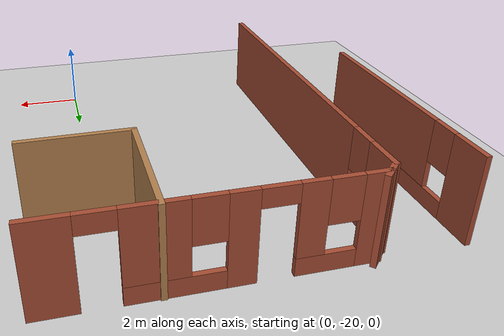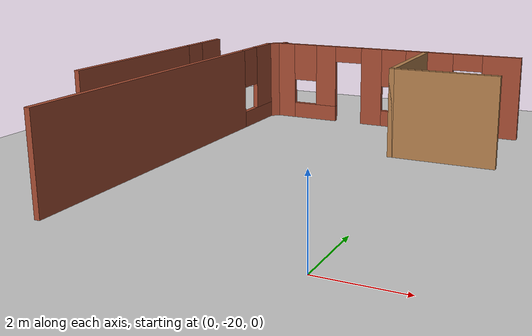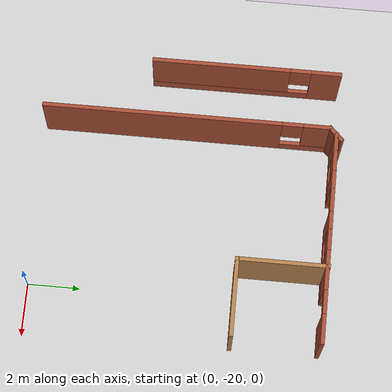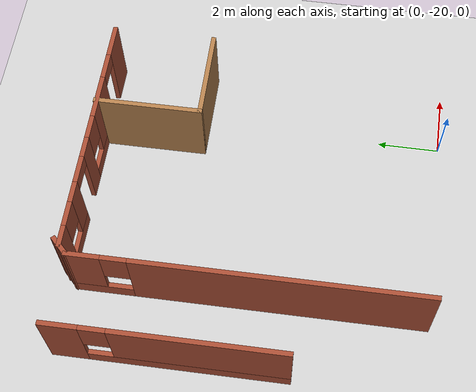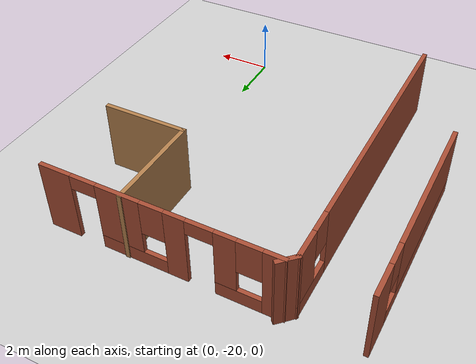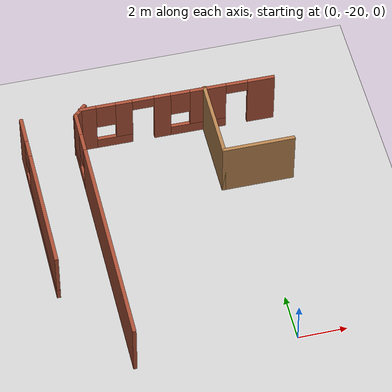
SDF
<sdf version="1.6">
 <world name="default">
  <model name="ground_plane">
   <static>1</static>
   <link name="link">
    <collision name="collision">
     <geometry><plane><normal>0 0 1</normal><size>100 100</size></plane></geometry>
     <surface><friction><ode><mu>100</mu><mu2>50</mu2></ode></friction></surface>
    </collision>
    <visual name="visual">
     <cast_shadows>0</cast_shadows>
     <geometry><plane><normal>0 0 1</normal><size>100 100</size></plane></geometry>
     <material>
      <script><uri>file://media/materials/scripts/gazebo.material</uri><name>Gazebo/Grey</name></script>
     </material>
    </visual>
   </link>
  </model>
  <model name="vital">
   <pose>1.2398 -2.19799 0 0 -0 0</pose>
   <link name="Wall_113">
    <pose>-9.88551 -10.1726 0 0 0 -1.5708</pose>
    <visual name="Wall_113_Visual_0">
     <pose>-3.04191 0 1.25 0 -0 0</pose>
     <geometry><box><size>1.16617 0.15 2.5</size></box></geometry>
     <material>
      <script><uri>file://media/materials/scripts/gazebo.material</uri><name>Gazebo/Bricks</name></script>
      <ambient>1 1 1 1</ambient>
     </material>
    </visual>
    <collision name="Wall_113_Collision_0">
     <geometry><box><size>1.16617 0.15 2.5</size></box></geometry>
     <pose>-3.04191 0 1.25 0 -0 0</pose>
    </collision>
    <visual name="Wall_113_Visual_1">
     <pose>0.583086 0 0.25 0 -0 0</pose>
     <geometry><box><size>6.08383 0.15 0.5</size></box></geometry>
     <material>
      <script><uri>file://media/materials/scripts/gazebo.material</uri><name>Gazebo/Bricks</name></script>
      <ambient>1 1 1 1</ambient>
     </material>
    </visual>
    <collision name="Wall_113_Collision_1">
     <geometry><box><size>6.08383 0.15 0.5</size></box></geometry>
     <pose>0.583086 0 0.25 0 -0 0</pose>
    </collision>
    <visual name="Wall_113_Visual_2">
     <pose>0.983086 0 1.5 0 -0 0</pose>
     <geometry><box><size>5.28383 0.15 2</size></box></geometry>
     <material>
      <script><uri>file://media/materials/scripts/gazebo.material</uri><name>Gazebo/Bricks</name></script>
      <ambient>1 1 1 1</ambient>
     </material>
    </visual>
    <collision name="Wall_113_Collision_2">
     <geometry><box><size>5.28383 0.15 2</size></box></geometry>
     <pose>0.983086 0 1.5 0 -0 0</pose>
    </collision>
    <visual name="Wall_113_Visual_3">
     <pose>-2.05883 0 1.9 0 -0 0</pose>
     <geometry><box><size>0.8 0.15 1.2</size></box></geometry>
     <material>
      <script><uri>file://media/materials/scripts/gazebo.material</uri><name>Gazebo/Bricks</name></script>
      <ambient>1 1 1 1</ambient>
     </material>
    </visual>
    <collision name="Wall_113_Collision_3">
     <geometry><box><size>0.8 0.15 1.2</size></box></geometry>
     <pose>-2.05883 0 1.9 0 -0 0</pose>
    </collision>
   </link>
   <link name="Wall_116">
    <pose>-3.44702 -6.63306 0 0 0 -0.006694</pose>
    <visual name="Wall_116_Visual_0">
     <pose>-3.71942 0 1.25 0 -0 0</pose>
     <geometry><box><size>0.704332 0.15 2.5</size></box></geometry>
     <material>
      <script><uri>file://media/materials/scripts/gazebo.material</uri><name>Gazebo/Bricks</name></script>
      <ambient>1 1 1 1</ambient>
     </material>
    </visual>
    <collision name="Wall_116_Collision_0">
     <geometry><box><size>0.704332 0.15 2.5</size></box></geometry>
     <pose>-3.71942 0 1.25 0 -0 0</pose>
    </collision>
    <visual name="Wall_116_Visual_1">
     <pose>-0.624879 0 1.25 0 -0 0</pose>
     <geometry><box><size>0.697096 0.15 2.5</size></box></geometry>
     <material>
      <script><uri>file://media/materials/scripts/gazebo.material</uri><name>Gazebo/Bricks</name></script>
      <ambient>1 1 1 1</ambient>
     </material>
    </visual>
    <collision name="Wall_116_Collision_1">
     <geometry><box><size>0.697096 0.15 2.5</size></box></geometry>
     <pose>-0.624879 0 1.25 0 -0 0</pose>
    </collision>
    <visual name="Wall_116_Visual_2">
     <pose>3.5022 0 1.25 0 -0 0</pose>
     <geometry><box><size>1.13877 0.15 2.5</size></box></geometry>
     <material>
      <script><uri>file://media/materials/scripts/gazebo.material</uri><name>Gazebo/Bricks</name></script>
      <ambient>1 1 1 1</ambient>
     </material>
    </visual>
    <collision name="Wall_116_Collision_2">
     <geometry><box><size>1.13877 0.15 2.5</size></box></geometry>
     <pose>3.5022 0 1.25 0 -0 0</pose>
    </collision>
    <visual name="Wall_116_Visual_3">
     <pose>-2.62034 0 0.25 0 -0 0</pose>
     <geometry><box><size>1.49383 0.15 0.5</size></box></geometry>
     <material>
      <script><uri>file://media/materials/scripts/gazebo.material</uri><name>Gazebo/Bricks</name></script>
      <ambient>1 1 1 1</ambient>
     </material>
    </visual>
    <collision name="Wall_116_Collision_3">
     <geometry><box><size>1.49383 0.15 0.5</size></box></geometry>
     <pose>-2.62034 0 0.25 0 -0 0</pose>
    </collision>
    <visual name="Wall_116_Visual_4">
     <pose>0.878245 0 0.25 0 -0 0</pose>
     <geometry><box><size>2.30915 0.15 0.5</size></box></geometry>
     <material>
      <script><uri>file://media/materials/scripts/gazebo.material</uri><name>Gazebo/Bricks</name></script>
      <ambient>1 1 1 1</ambient>
     </material>
    </visual>
    <collision name="Wall_116_Collision_4">
     <geometry><box><size>2.30915 0.15 0.5</size></box></geometry>
     <pose>0.878245 0 0.25 0 -0 0</pose>
    </collision>
    <visual name="Wall_116_Visual_5">
     <pose>-2.22034 0 1.5 0 -0 0</pose>
     <geometry><box><size>0.693829 0.15 2</size></box></geometry>
     <material>
      <script><uri>file://media/materials/scripts/gazebo.material</uri><name>Gazebo/Bricks</name></script>
      <ambient>1 1 1 1</ambient>
     </material>
    </visual>
    <collision name="Wall_116_Collision_5">
     <geometry><box><size>0.693829 0.15 2</size></box></geometry>
     <pose>-2.22034 0 1.5 0 -0 0</pose>
    </collision>
    <visual name="Wall_116_Visual_6">
     <pose>-2.22034 0 1.5 0 -0 0</pose>
     <geometry><box><size>0.693829 0.15 2</size></box></geometry>
     <material>
      <script><uri>file://media/materials/scripts/gazebo.material</uri><name>Gazebo/Bricks</name></script>
      <ambient>1 1 1 1</ambient>
     </material>
    </visual>
    <collision name="Wall_116_Collision_6">
     <geometry><box><size>0.693829 0.15 2</size></box></geometry>
     <pose>-2.22034 0 1.5 0 -0 0</pose>
    </collision>
    <visual name="Wall_116_Visual_7">
     <pose>1.27825 0 1.5 0 -0 0</pose>
     <geometry><box><size>1.50915 0.15 2</size></box></geometry>
     <material>
      <script><uri>file://media/materials/scripts/gazebo.material</uri><name>Gazebo/Bricks</name></script>
      <ambient>1 1 1 1</ambient>
     </material>
    </visual>
    <collision name="Wall_116_Collision_7">
     <geometry><box><size>1.50915 0.15 2</size></box></geometry>
     <pose>1.27825 0 1.5 0 -0 0</pose>
    </collision>
    <visual name="Wall_116_Visual_8">
     <pose>-2.96726 0 1.9 0 -0 0</pose>
     <geometry><box><size>0.8 0.15 1.2</size></box></geometry>
     <material>
      <script><uri>file://media/materials/scripts/gazebo.material</uri><name>Gazebo/Bricks</name></script>
      <ambient>1 1 1 1</ambient>
     </material>
    </visual>
    <collision name="Wall_116_Collision_8">
     <geometry><box><size>0.8 0.15 1.2</size></box></geometry>
     <pose>-2.96726 0 1.9 0 -0 0</pose>
    </collision>
    <visual name="Wall_116_Visual_9">
     <pose>0.12367 0 1.9 0 -0 0</pose>
     <geometry><box><size>0.8 0.15 1.2</size></box></geometry>
     <material>
      <script><uri>file://media/materials/scripts/gazebo.material</uri><name>Gazebo/Bricks</name></script>
      <ambient>1 1 1 1</ambient>
     </material>
    </visual>
    <collision name="Wall_116_Collision_9">
     <geometry><box><size>0.8 0.15 1.2</size></box></geometry>
     <pose>0.12367 0 1.9 0 -0 0</pose>
    </collision>
    <visual name="Wall_116_Visual_10">
     <pose>-1.42343 0 2.25 0 -0 0</pose>
     <geometry><box><size>0.9 0.15 0.5</size></box></geometry>
     <material>
      <script><uri>file://media/materials/scripts/gazebo.material</uri><name>Gazebo/Bricks</name></script>
      <ambient>1 1 1 1</ambient>
     </material>
    </visual>
    <collision name="Wall_116_Collision_10">
     <geometry><box><size>0.9 0.15 0.5</size></box></geometry>
     <pose>-1.42343 0 2.25 0 -0 0</pose>
    </collision>
    <visual name="Wall_116_Visual_11">
     <pose>-1.42343 0 2.25 0 -0 0</pose>
     <geometry><box><size>0.9 0.15 0.5</size></box></geometry>
     <material>
      <script><uri>file://media/materials/scripts/gazebo.material</uri><name>Gazebo/Bricks</name></script>
      <ambient>1 1 1 1</ambient>
     </material>
    </visual>
    <collision name="Wall_116_Collision_11">
     <geometry><box><size>0.9 0.15 0.5</size></box></geometry>
     <pose>-1.42343 0 2.25 0 -0 0</pose>
    </collision>
    <visual name="Wall_116_Visual_12">
     <pose>2.48282 0 2.25 0 -0 0</pose>
     <geometry><box><size>0.9 0.15 0.5</size></box></geometry>
     <material>
      <script><uri>file://media/materials/scripts/gazebo.material</uri><name>Gazebo/Bricks</name></script>
      <ambient>1 1 1 1</ambient>
     </material>
    </visual>
    <collision name="Wall_116_Collision_12">
     <geometry><box><size>0.9 0.15 0.5</size></box></geometry>
     <pose>2.48282 0 2.25 0 -0 0</pose>
    </collision>
   </link>
   <link name="Wall_119">
    <pose>-7.69351 -12.2813 0 0 -0 1.5708</pose>
    <visual name="Wall_119_Visual_0">
     <pose>-0.947604 0 1.25 0 -0 0</pose>
     <geometry><box><size>9.10479 0.15 2.5</size></box></geometry>
     <material>
      <script><uri>file://media/materials/scripts/gazebo.material</uri><name>Gazebo/Bricks</name></script>
      <ambient>1 1 1 1</ambient>
     </material>
    </visual>
    <collision name="Wall_119_Collision_0">
     <geometry><box><size>9.10479 0.15 2.5</size></box></geometry>
     <pose>-0.947604 0 1.25 0 -0 0</pose>
    </collision>
    <visual name="Wall_119_Visual_1">
     <pose>4.5524 0 0.25 0 -0 0</pose>
     <geometry><box><size>1.89521 0.15 0.5</size></box></geometry>
     <material>
      <script><uri>file://media/materials/scripts/gazebo.material</uri><name>Gazebo/Bricks</name></script>
      <ambient>1 1 1 1</ambient>
     </material>
    </visual>
    <collision name="Wall_119_Collision_1">
     <geometry><box><size>1.89521 0.15 0.5</size></box></geometry>
     <pose>4.5524 0 0.25 0 -0 0</pose>
    </collision>
    <visual name="Wall_119_Visual_2">
     <pose>4.9524 0 1.5 0 -0 0</pose>
     <geometry><box><size>1.09521 0.15 2</size></box></geometry>
     <material>
      <script><uri>file://media/materials/scripts/gazebo.material</uri><name>Gazebo/Bricks</name></script>
      <ambient>1 1 1 1</ambient>
     </material>
    </visual>
    <collision name="Wall_119_Collision_2">
     <geometry><box><size>1.09521 0.15 2</size></box></geometry>
     <pose>4.9524 0 1.5 0 -0 0</pose>
    </collision>
    <visual name="Wall_119_Visual_3">
     <pose>4.00479 0 1.9 0 -0 0</pose>
     <geometry><box><size>0.8 0.15 1.2</size></box></geometry>
     <material>
      <script><uri>file://media/materials/scripts/gazebo.material</uri><name>Gazebo/Bricks</name></script>
      <ambient>1 1 1 1</ambient>
     </material>
    </visual>
    <collision name="Wall_119_Collision_3">
     <geometry><box><size>0.8 0.15 1.2</size></box></geometry>
     <pose>4.00479 0 1.9 0 -0 0</pose>
    </collision>
   </link>
   <link name="Wall_120">
    <collision name="Wall_120_Collision">
     <geometry><box><size>0.75 0.15 2.5</size></box></geometry>
     <pose>0 0 1.25 0 -0 0</pose>
    </collision>
    <visual name="Wall_120_Visual">
     <pose>0 0 1.25 0 -0 0</pose>
     <geometry><box><size>0.75 0.15 2.5</size></box></geometry>
     <material>
      <script><uri>file://media/materials/scripts/gazebo.material</uri><name>Gazebo/Bricks</name></script>
      <ambient>1 1 1 1</ambient>
     </material>
    </visual>
    <pose>-7.48138 -6.64417 0 0 -0 0.785398</pose>
   </link>
   <link name="Wall_122">
    <collision name="Wall_122_Collision">
     <geometry><box><size>3.5 0.15 2.5</size></box></geometry>
     <pose>0 0 1.25 0 -0 0</pose>
    </collision>
    <visual name="Wall_122_Visual">
     <pose>0 0 1.25 0 -0 0</pose>
     <geometry><box><size>3.5 0.15 2.5</size></box></geometry>
     <material>
      <script><uri>file://media/materials/scripts/gazebo.material</uri><name>Gazebo/Wood</name></script>
      <ambient>1 1 1 1</ambient>
     </material>
    </visual>
    <pose>-2.29682 -8.28131 0 0 0 -1.5708</pose>
   </link>
   <link name="Wall_123">
    <collision name="Wall_123_Collision">
     <geometry><box><size>3 0.15 2.5</size></box></geometry>
     <pose>0 0 1.25 0 -0 0</pose>
    </collision>
    <visual name="Wall_123_Visual">
     <pose>0 0 1.25 0 -0 0</pose>
     <geometry><box><size>3 0.15 2.5</size></box></geometry>
     <material>
      <script><uri>file://media/materials/scripts/gazebo.material</uri><name>Gazebo/Wood</name></script>
      <ambient>1 1 1 1</ambient>
     </material>
    </visual>
    <pose>-0.871823 -9.95631 0 0 -0 0</pose>
   </link>
   <static>1</static>
  </model>
 </world>
</sdf>
